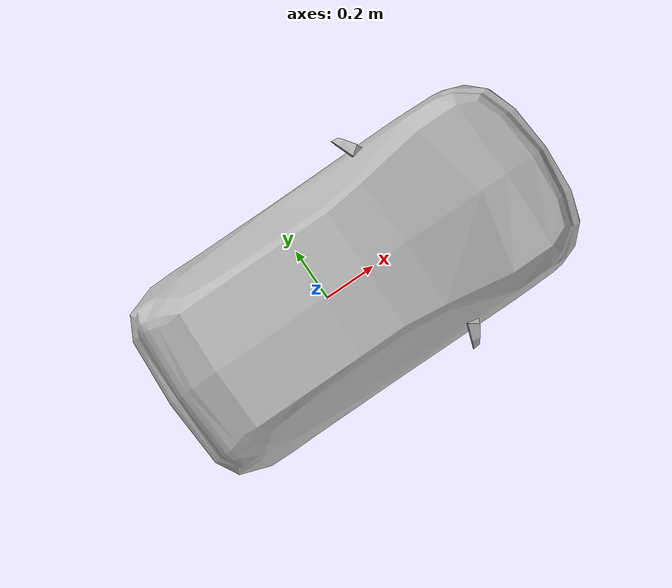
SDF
<?xml version="1.0" ?>
<sdf version="1.6">
  <model name="hatchback_blue">
    <static>true</static>
    <link name="link">
      <collision name="collision">
        <pose>0 0 0 0 0 1.57079632679</pose>
        <geometry>
          <mesh>
            <scale>0.01 0.01 0.01</scale>
            <uri>model://hatchback_blue/meshes/hatchback.obj</uri>
          </mesh>
        </geometry>
      </collision>
      <visual name="visual">
        <pose>0 0 0 0 0 1.57079632679</pose>
        <geometry>
          <mesh>
            <scale>0.01 0.01 0.01</scale>
            <uri>model://hatchback_blue/meshes/hatchback.obj</uri>
          </mesh>
        </geometry>
      </visual>
    </link>
  </model>
</sdf>
